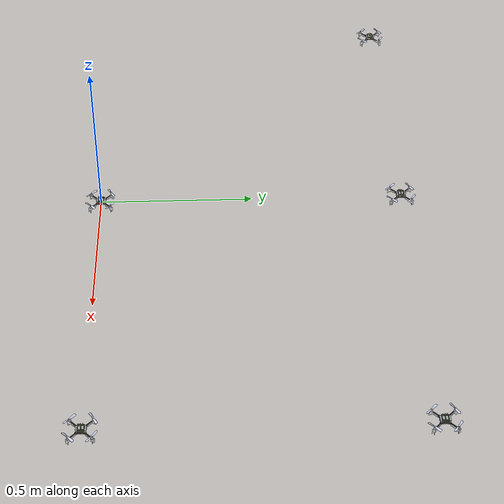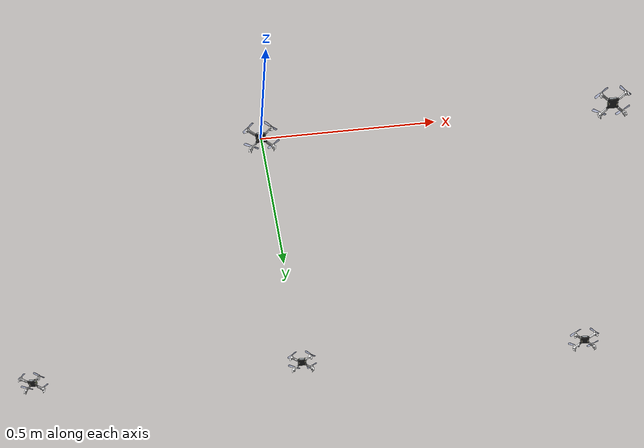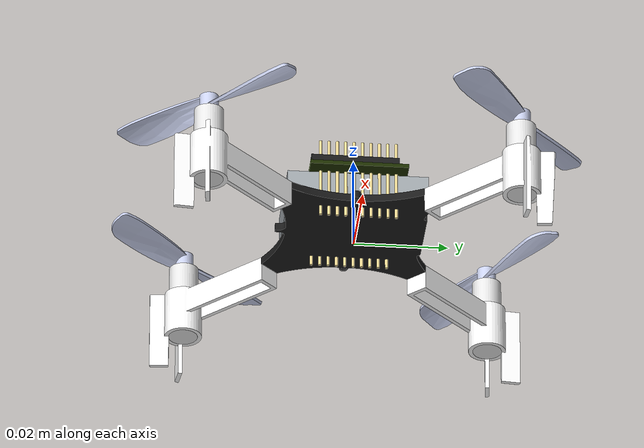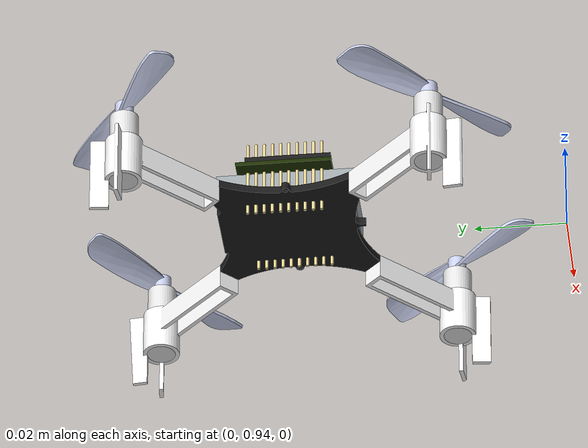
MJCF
<mujoco><compiler inertiafromgeom="false" meshdir="assets" autolimits="true" />

  <option integrator="RK4" density="1.225" viscosity="1.8e-5" />

  <asset>
    <material name="polished_plastic" rgba="0.631 0.659 0.678 1" />
    <material name="polished_gold" rgba="0.969 0.878 0.6 1" />
    <material name="medium_gloss_plastic" rgba="0.109 0.184 0.0 1" />
    <material name="propeller_plastic" rgba="0.792 0.820 0.933 1" />
    <material name="white" rgba="1 1 1 1" />
    <material name="body_frame_plastic" rgba="0.102 0.102 0.102 1" />
    <material name="burnished_chrome" rgba="0.898 0.898 0.898 1" />

    <mesh file="cf2_0.obj" />
    <mesh file="cf2_1.obj" />
    <mesh file="cf2_2.obj" />
    <mesh file="cf2_3.obj" />
    <mesh file="cf2_4.obj" />
    <mesh file="cf2_5.obj" />
    <mesh file="cf2_6.obj" />
    <mesh file="cf2_collision_0.obj" />
    <mesh file="cf2_collision_1.obj" />
    <mesh file="cf2_collision_2.obj" />
    <mesh file="cf2_collision_3.obj" />
    <mesh file="cf2_collision_4.obj" />
    <mesh file="cf2_collision_5.obj" />
    <mesh file="cf2_collision_6.obj" />
    <mesh file="cf2_collision_7.obj" />
    <mesh file="cf2_collision_8.obj" />
    <mesh file="cf2_collision_9.obj" />
    <mesh file="cf2_collision_10.obj" />
    <mesh file="cf2_collision_11.obj" />
    <mesh file="cf2_collision_12.obj" />
    <mesh file="cf2_collision_13.obj" />
    <mesh file="cf2_collision_14.obj" />
    <mesh file="cf2_collision_15.obj" />
    <mesh file="cf2_collision_16.obj" />
    <mesh file="cf2_collision_17.obj" />
    <mesh file="cf2_collision_18.obj" />
    <mesh file="cf2_collision_19.obj" />
    <mesh file="cf2_collision_20.obj" />
    <mesh file="cf2_collision_21.obj" />
    <mesh file="cf2_collision_22.obj" />
    <mesh file="cf2_collision_23.obj" />
    <mesh file="cf2_collision_24.obj" />
    <mesh file="cf2_collision_25.obj" />
    <mesh file="cf2_collision_26.obj" />
    <mesh file="cf2_collision_27.obj" />
    <mesh file="cf2_collision_28.obj" />
    <mesh file="cf2_collision_29.obj" />
    <mesh file="cf2_collision_30.obj" />
    <mesh file="cf2_collision_31.obj" />
  </asset>

  <worldbody><body name="cf2_copy_0" pos="0 0 0" childclass="cf2">
      <freejoint />
      <inertial pos="0 0 0" mass="0.027" diaginertia="2.3951e-5 2.3951e-5 3.2347e-5" />
      <camera name="track_copy_0" pos="-1 0 .5" xyaxes="0 -1 0 1 0 2" mode="trackcom" />
      <geom mesh="cf2_0" material="propeller_plastic" class="visual" />
      <geom mesh="cf2_1" material="medium_gloss_plastic" class="visual" />
      <geom mesh="cf2_2" material="polished_gold" class="visual" />
      <geom mesh="cf2_3" material="polished_plastic" class="visual" />
      <geom mesh="cf2_4" material="burnished_chrome" class="visual" />
      <geom mesh="cf2_5" material="body_frame_plastic" class="visual" />
      <geom mesh="cf2_6" material="white" class="visual" />
      <geom mesh="cf2_collision_0" class="collision" />
      <geom mesh="cf2_collision_1" class="collision" />
      <geom mesh="cf2_collision_2" class="collision" />
      <geom mesh="cf2_collision_3" class="collision" />
      <geom mesh="cf2_collision_4" class="collision" />
      <geom mesh="cf2_collision_5" class="collision" />
      <geom mesh="cf2_collision_6" class="collision" />
      <geom mesh="cf2_collision_7" class="collision" />
      <geom mesh="cf2_collision_8" class="collision" />
      <geom mesh="cf2_collision_9" class="collision" />
      <geom mesh="cf2_collision_10" class="collision" />
      <geom mesh="cf2_collision_11" class="collision" />
      <geom mesh="cf2_collision_12" class="collision" />
      <geom mesh="cf2_collision_13" class="collision" />
      <geom mesh="cf2_collision_14" class="collision" />
      <geom mesh="cf2_collision_15" class="collision" />
      <geom mesh="cf2_collision_16" class="collision" />
      <geom mesh="cf2_collision_17" class="collision" />
      <geom mesh="cf2_collision_18" class="collision" />
      <geom mesh="cf2_collision_19" class="collision" />
      <geom mesh="cf2_collision_20" class="collision" />
      <geom mesh="cf2_collision_21" class="collision" />
      <geom mesh="cf2_collision_22" class="collision" />
      <geom mesh="cf2_collision_23" class="collision" />
      <geom mesh="cf2_collision_24" class="collision" />
      <geom mesh="cf2_collision_25" class="collision" />
      <geom mesh="cf2_collision_26" class="collision" />
      <geom mesh="cf2_collision_27" class="collision" />
      <geom mesh="cf2_collision_28" class="collision" />
      <geom mesh="cf2_collision_29" class="collision" />
      <geom mesh="cf2_collision_30" class="collision" />
      <geom mesh="cf2_collision_31" class="collision" />
      <site name="imu_copy_0" />
      <site name="actuation_copy_0" />
    </body>
  <body name="cf2_copy_1" pos="1 0 0" childclass="cf2">
      <freejoint />
      <inertial pos="0 0 0" mass="0.027" diaginertia="2.3951e-5 2.3951e-5 3.2347e-5" />
      <camera name="track_copy_1" pos="-1 0 .5" xyaxes="0 -1 0 1 0 2" mode="trackcom" />
      <geom mesh="cf2_0" material="propeller_plastic" class="visual" />
      <geom mesh="cf2_1" material="medium_gloss_plastic" class="visual" />
      <geom mesh="cf2_2" material="polished_gold" class="visual" />
      <geom mesh="cf2_3" material="polished_plastic" class="visual" />
      <geom mesh="cf2_4" material="burnished_chrome" class="visual" />
      <geom mesh="cf2_5" material="body_frame_plastic" class="visual" />
      <geom mesh="cf2_6" material="white" class="visual" />
      <geom mesh="cf2_collision_0" class="collision" />
      <geom mesh="cf2_collision_1" class="collision" />
      <geom mesh="cf2_collision_2" class="collision" />
      <geom mesh="cf2_collision_3" class="collision" />
      <geom mesh="cf2_collision_4" class="collision" />
      <geom mesh="cf2_collision_5" class="collision" />
      <geom mesh="cf2_collision_6" class="collision" />
      <geom mesh="cf2_collision_7" class="collision" />
      <geom mesh="cf2_collision_8" class="collision" />
      <geom mesh="cf2_collision_9" class="collision" />
      <geom mesh="cf2_collision_10" class="collision" />
      <geom mesh="cf2_collision_11" class="collision" />
      <geom mesh="cf2_collision_12" class="collision" />
      <geom mesh="cf2_collision_13" class="collision" />
      <geom mesh="cf2_collision_14" class="collision" />
      <geom mesh="cf2_collision_15" class="collision" />
      <geom mesh="cf2_collision_16" class="collision" />
      <geom mesh="cf2_collision_17" class="collision" />
      <geom mesh="cf2_collision_18" class="collision" />
      <geom mesh="cf2_collision_19" class="collision" />
      <geom mesh="cf2_collision_20" class="collision" />
      <geom mesh="cf2_collision_21" class="collision" />
      <geom mesh="cf2_collision_22" class="collision" />
      <geom mesh="cf2_collision_23" class="collision" />
      <geom mesh="cf2_collision_24" class="collision" />
      <geom mesh="cf2_collision_25" class="collision" />
      <geom mesh="cf2_collision_26" class="collision" />
      <geom mesh="cf2_collision_27" class="collision" />
      <geom mesh="cf2_collision_28" class="collision" />
      <geom mesh="cf2_collision_29" class="collision" />
      <geom mesh="cf2_collision_30" class="collision" />
      <geom mesh="cf2_collision_31" class="collision" />
      <site name="imu_copy_1" />
      <site name="actuation_copy_1" />
    </body>
  <body name="cf2_copy_2" pos="1 1 0" childclass="cf2">
      <freejoint />
      <inertial pos="0 0 0" mass="0.027" diaginertia="2.3951e-5 2.3951e-5 3.2347e-5" />
      <camera name="track_copy_2" pos="-1 0 .5" xyaxes="0 -1 0 1 0 2" mode="trackcom" />
      <geom mesh="cf2_0" material="propeller_plastic" class="visual" />
      <geom mesh="cf2_1" material="medium_gloss_plastic" class="visual" />
      <geom mesh="cf2_2" material="polished_gold" class="visual" />
      <geom mesh="cf2_3" material="polished_plastic" class="visual" />
      <geom mesh="cf2_4" material="burnished_chrome" class="visual" />
      <geom mesh="cf2_5" material="body_frame_plastic" class="visual" />
      <geom mesh="cf2_6" material="white" class="visual" />
      <geom mesh="cf2_collision_0" class="collision" />
      <geom mesh="cf2_collision_1" class="collision" />
      <geom mesh="cf2_collision_2" class="collision" />
      <geom mesh="cf2_collision_3" class="collision" />
      <geom mesh="cf2_collision_4" class="collision" />
      <geom mesh="cf2_collision_5" class="collision" />
      <geom mesh="cf2_collision_6" class="collision" />
      <geom mesh="cf2_collision_7" class="collision" />
      <geom mesh="cf2_collision_8" class="collision" />
      <geom mesh="cf2_collision_9" class="collision" />
      <geom mesh="cf2_collision_10" class="collision" />
      <geom mesh="cf2_collision_11" class="collision" />
      <geom mesh="cf2_collision_12" class="collision" />
      <geom mesh="cf2_collision_13" class="collision" />
      <geom mesh="cf2_collision_14" class="collision" />
      <geom mesh="cf2_collision_15" class="collision" />
      <geom mesh="cf2_collision_16" class="collision" />
      <geom mesh="cf2_collision_17" class="collision" />
      <geom mesh="cf2_collision_18" class="collision" />
      <geom mesh="cf2_collision_19" class="collision" />
      <geom mesh="cf2_collision_20" class="collision" />
      <geom mesh="cf2_collision_21" class="collision" />
      <geom mesh="cf2_collision_22" class="collision" />
      <geom mesh="cf2_collision_23" class="collision" />
      <geom mesh="cf2_collision_24" class="collision" />
      <geom mesh="cf2_collision_25" class="collision" />
      <geom mesh="cf2_collision_26" class="collision" />
      <geom mesh="cf2_collision_27" class="collision" />
      <geom mesh="cf2_collision_28" class="collision" />
      <geom mesh="cf2_collision_29" class="collision" />
      <geom mesh="cf2_collision_30" class="collision" />
      <geom mesh="cf2_collision_31" class="collision" />
      <site name="imu_copy_2" />
      <site name="actuation_copy_2" />
    </body>
  <body name="cf2_copy_3" pos="0 1 0" childclass="cf2">
      <freejoint />
      <inertial pos="0 0 0" mass="0.027" diaginertia="2.3951e-5 2.3951e-5 3.2347e-5" />
      <camera name="track_copy_3" pos="-1 0 .5" xyaxes="0 -1 0 1 0 2" mode="trackcom" />
      <geom mesh="cf2_0" material="propeller_plastic" class="visual" />
      <geom mesh="cf2_1" material="medium_gloss_plastic" class="visual" />
      <geom mesh="cf2_2" material="polished_gold" class="visual" />
      <geom mesh="cf2_3" material="polished_plastic" class="visual" />
      <geom mesh="cf2_4" material="burnished_chrome" class="visual" />
      <geom mesh="cf2_5" material="body_frame_plastic" class="visual" />
      <geom mesh="cf2_6" material="white" class="visual" />
      <geom mesh="cf2_collision_0" class="collision" />
      <geom mesh="cf2_collision_1" class="collision" />
      <geom mesh="cf2_collision_2" class="collision" />
      <geom mesh="cf2_collision_3" class="collision" />
      <geom mesh="cf2_collision_4" class="collision" />
      <geom mesh="cf2_collision_5" class="collision" />
      <geom mesh="cf2_collision_6" class="collision" />
      <geom mesh="cf2_collision_7" class="collision" />
      <geom mesh="cf2_collision_8" class="collision" />
      <geom mesh="cf2_collision_9" class="collision" />
      <geom mesh="cf2_collision_10" class="collision" />
      <geom mesh="cf2_collision_11" class="collision" />
      <geom mesh="cf2_collision_12" class="collision" />
      <geom mesh="cf2_collision_13" class="collision" />
      <geom mesh="cf2_collision_14" class="collision" />
      <geom mesh="cf2_collision_15" class="collision" />
      <geom mesh="cf2_collision_16" class="collision" />
      <geom mesh="cf2_collision_17" class="collision" />
      <geom mesh="cf2_collision_18" class="collision" />
      <geom mesh="cf2_collision_19" class="collision" />
      <geom mesh="cf2_collision_20" class="collision" />
      <geom mesh="cf2_collision_21" class="collision" />
      <geom mesh="cf2_collision_22" class="collision" />
      <geom mesh="cf2_collision_23" class="collision" />
      <geom mesh="cf2_collision_24" class="collision" />
      <geom mesh="cf2_collision_25" class="collision" />
      <geom mesh="cf2_collision_26" class="collision" />
      <geom mesh="cf2_collision_27" class="collision" />
      <geom mesh="cf2_collision_28" class="collision" />
      <geom mesh="cf2_collision_29" class="collision" />
      <geom mesh="cf2_collision_30" class="collision" />
      <geom mesh="cf2_collision_31" class="collision" />
      <site name="imu_copy_3" />
      <site name="actuation_copy_3" />
    </body>
  <body name="cf2_copy_4" pos="-1 1 0" childclass="cf2">
      <freejoint />
      <inertial pos="0 0 0" mass="0.027" diaginertia="2.3951e-5 2.3951e-5 3.2347e-5" />
      <camera name="track_copy_4" pos="-1 0 .5" xyaxes="0 -1 0 1 0 2" mode="trackcom" />
      <geom mesh="cf2_0" material="propeller_plastic" class="visual" />
      <geom mesh="cf2_1" material="medium_gloss_plastic" class="visual" />
      <geom mesh="cf2_2" material="polished_gold" class="visual" />
      <geom mesh="cf2_3" material="polished_plastic" class="visual" />
      <geom mesh="cf2_4" material="burnished_chrome" class="visual" />
      <geom mesh="cf2_5" material="body_frame_plastic" class="visual" />
      <geom mesh="cf2_6" material="white" class="visual" />
      <geom mesh="cf2_collision_0" class="collision" />
      <geom mesh="cf2_collision_1" class="collision" />
      <geom mesh="cf2_collision_2" class="collision" />
      <geom mesh="cf2_collision_3" class="collision" />
      <geom mesh="cf2_collision_4" class="collision" />
      <geom mesh="cf2_collision_5" class="collision" />
      <geom mesh="cf2_collision_6" class="collision" />
      <geom mesh="cf2_collision_7" class="collision" />
      <geom mesh="cf2_collision_8" class="collision" />
      <geom mesh="cf2_collision_9" class="collision" />
      <geom mesh="cf2_collision_10" class="collision" />
      <geom mesh="cf2_collision_11" class="collision" />
      <geom mesh="cf2_collision_12" class="collision" />
      <geom mesh="cf2_collision_13" class="collision" />
      <geom mesh="cf2_collision_14" class="collision" />
      <geom mesh="cf2_collision_15" class="collision" />
      <geom mesh="cf2_collision_16" class="collision" />
      <geom mesh="cf2_collision_17" class="collision" />
      <geom mesh="cf2_collision_18" class="collision" />
      <geom mesh="cf2_collision_19" class="collision" />
      <geom mesh="cf2_collision_20" class="collision" />
      <geom mesh="cf2_collision_21" class="collision" />
      <geom mesh="cf2_collision_22" class="collision" />
      <geom mesh="cf2_collision_23" class="collision" />
      <geom mesh="cf2_collision_24" class="collision" />
      <geom mesh="cf2_collision_25" class="collision" />
      <geom mesh="cf2_collision_26" class="collision" />
      <geom mesh="cf2_collision_27" class="collision" />
      <geom mesh="cf2_collision_28" class="collision" />
      <geom mesh="cf2_collision_29" class="collision" />
      <geom mesh="cf2_collision_30" class="collision" />
      <geom mesh="cf2_collision_31" class="collision" />
      <site name="imu_copy_4" />
      <site name="actuation_copy_4" />
    </body>
  </worldbody><actuator><motor class="cf2" ctrlrange="0 0.35" gear="0 0 1 0 0 0" site="actuation_copy_0" name="body_thrust_copy_0" />
    <motor class="cf2" ctrlrange="-1 1" gear="0 0 0 -0.00001 0 0" site="actuation_copy_0" name="x_moment_copy_0" />
    <motor class="cf2" ctrlrange="-1 1" gear="0 0 0 0 -0.00001 0" site="actuation_copy_0" name="y_moment_copy_0" />
    <motor class="cf2" ctrlrange="-1 1" gear="0 0 0 0 0 -0.00001" site="actuation_copy_0" name="z_moment_copy_0" />
  <motor class="cf2" ctrlrange="0 0.35" gear="0 0 1 0 0 0" site="actuation_copy_1" name="body_thrust_copy_1" />
    <motor class="cf2" ctrlrange="-1 1" gear="0 0 0 -0.00001 0 0" site="actuation_copy_1" name="x_moment_copy_1" />
    <motor class="cf2" ctrlrange="-1 1" gear="0 0 0 0 -0.00001 0" site="actuation_copy_1" name="y_moment_copy_1" />
    <motor class="cf2" ctrlrange="-1 1" gear="0 0 0 0 0 -0.00001" site="actuation_copy_1" name="z_moment_copy_1" />
  <motor class="cf2" ctrlrange="0 0.35" gear="0 0 1 0 0 0" site="actuation_copy_2" name="body_thrust_copy_2" />
    <motor class="cf2" ctrlrange="-1 1" gear="0 0 0 -0.00001 0 0" site="actuation_copy_2" name="x_moment_copy_2" />
    <motor class="cf2" ctrlrange="-1 1" gear="0 0 0 0 -0.00001 0" site="actuation_copy_2" name="y_moment_copy_2" />
    <motor class="cf2" ctrlrange="-1 1" gear="0 0 0 0 0 -0.00001" site="actuation_copy_2" name="z_moment_copy_2" />
  <motor class="cf2" ctrlrange="0 0.35" gear="0 0 1 0 0 0" site="actuation_copy_3" name="body_thrust_copy_3" />
    <motor class="cf2" ctrlrange="-1 1" gear="0 0 0 -0.00001 0 0" site="actuation_copy_3" name="x_moment_copy_3" />
    <motor class="cf2" ctrlrange="-1 1" gear="0 0 0 0 -0.00001 0" site="actuation_copy_3" name="y_moment_copy_3" />
    <motor class="cf2" ctrlrange="-1 1" gear="0 0 0 0 0 -0.00001" site="actuation_copy_3" name="z_moment_copy_3" />
  <motor class="cf2" ctrlrange="0 0.35" gear="0 0 1 0 0 0" site="actuation_copy_4" name="body_thrust_copy_4" />
    <motor class="cf2" ctrlrange="-1 1" gear="0 0 0 -0.00001 0 0" site="actuation_copy_4" name="x_moment_copy_4" />
    <motor class="cf2" ctrlrange="-1 1" gear="0 0 0 0 -0.00001 0" site="actuation_copy_4" name="y_moment_copy_4" />
    <motor class="cf2" ctrlrange="-1 1" gear="0 0 0 0 0 -0.00001" site="actuation_copy_4" name="z_moment_copy_4" />
  </actuator><sensor><gyro name="body_gyro_copy_0" site="imu_copy_0" />
    <accelerometer name="body_linacc_copy_0" site="imu_copy_0" />
    <framequat name="body_quat_copy_0" objtype="site" objname="imu_copy_0" />
  <gyro name="body_gyro_copy_1" site="imu_copy_1" />
    <accelerometer name="body_linacc_copy_1" site="imu_copy_1" />
    <framequat name="body_quat_copy_1" objtype="site" objname="imu_copy_1" />
  <gyro name="body_gyro_copy_2" site="imu_copy_2" />
    <accelerometer name="body_linacc_copy_2" site="imu_copy_2" />
    <framequat name="body_quat_copy_2" objtype="site" objname="imu_copy_2" />
  <gyro name="body_gyro_copy_3" site="imu_copy_3" />
    <accelerometer name="body_linacc_copy_3" site="imu_copy_3" />
    <framequat name="body_quat_copy_3" objtype="site" objname="imu_copy_3" />
  <gyro name="body_gyro_copy_4" site="imu_copy_4" />
    <accelerometer name="body_linacc_copy_4" site="imu_copy_4" />
    <framequat name="body_quat_copy_4" objtype="site" objname="imu_copy_4" />
  </sensor><keyframe>
    <key name="hover" qpos="0 0 0.1 1 0 0 0 0 0 0.1 1 0 0 0 0 0 0.1 1 0 0 0 0 0 0.1 1 0 0 0 0 0 0.1 1 0 0 0" ctrl="0.26487 0 0 0 0.26487 0 0 0 0.26487 0 0 0 0.26487 0 0 0 0.26487 0 0 0" />
  </keyframe>
<default>
    <default class="cf2">
      <default class="visual">
        <geom group="2" type="mesh" contype="0" conaffinity="0" />
      </default>
      <default class="collision">
        <geom group="3" type="mesh" />
      </default>
      <site group="5" />
    </default>
  </default>

  </mujoco>
